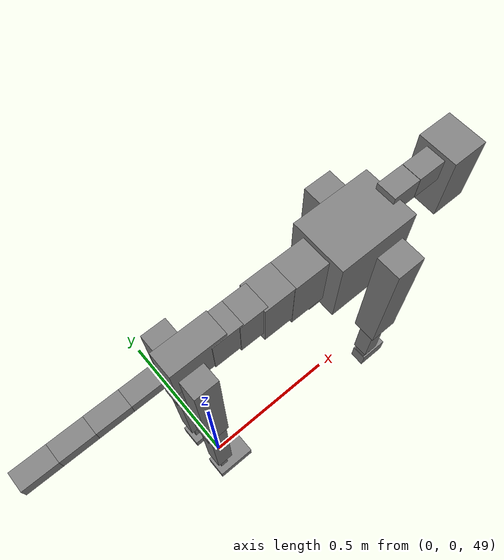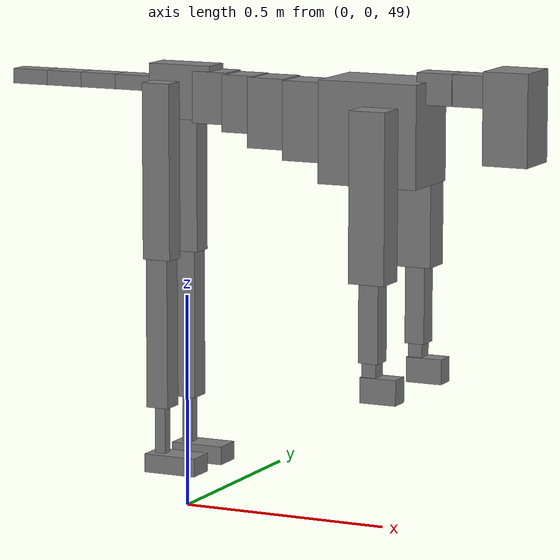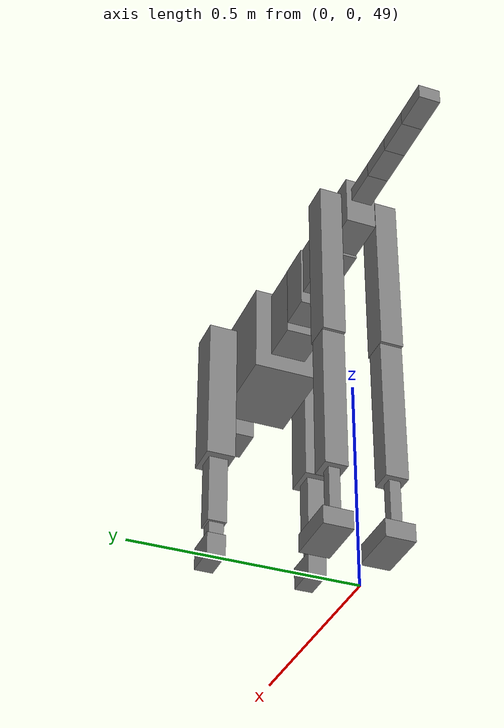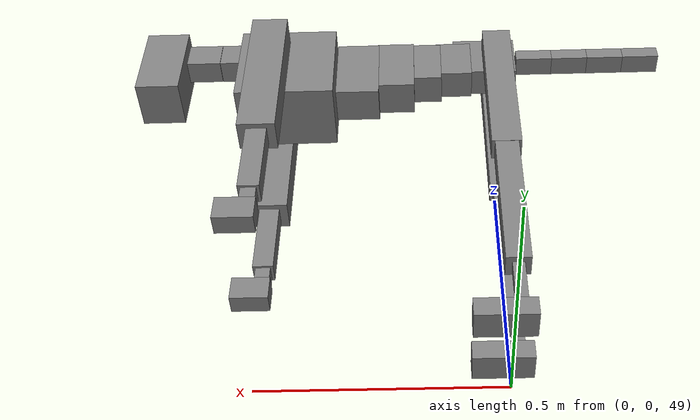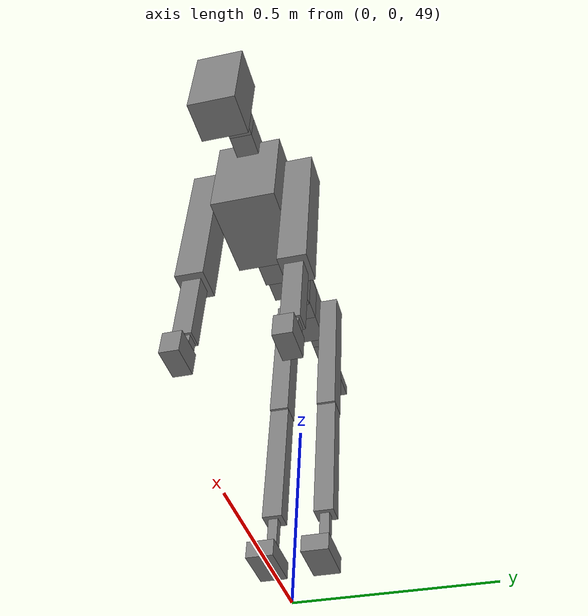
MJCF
<mujoco model="dog">

    <default>
        <joint armature="0.02" stiffness="1" damping="0.2" limited="true"/>
        <geom condim="3" friction="1 0.05 0.05" margin="0.01"/>
        <motor ctrllimited="true" ctrlrange="-1.0 1.0" forcelimited="true" gear="50"/>
    </default>

    <compiler inertiafromgeom="true" angle="radian"/>

    <option timestep="0.016" iterations="50" tolerance="1e-10" solver="Newton" jacobian="dense" cone="pyramidal"/>

    <size nconmax="20000" njmax="60000" nstack="5000000"/>
    <visual>
        <map force="0.1" zfar="30"/>
        <rgba haze="0.15 0.25 0.35 1"/>
        <quality shadowsize="2048"/>
        <global offwidth="800" offheight="800"/>
    </visual>

    <asset>
        <texture type="skybox" builtin="gradient" rgb1="0.3 0.5 0.7" rgb2="0 0 0" width="512" height="512"/>
        <texture name="texplane" type="2d" builtin="checker" rgb1=".2 .3 .4" rgb2=".1 0.15 0.2" width="512" height="512"
                 mark="cross" markrgb=".8 .8 .8"/>
        <texture name="texgeom" type="cube" builtin="flat" mark="cross" width="127" height="1278" rgb1="0.8 0.6 0.4"
                 rgb2="0.8 0.6 0.4" markrgb="1 1 1" random="0.01"/>

        <material name="matplane" reflectance="0.3" texture="texplane" texrepeat="1 1" texuniform="true"/>
        <material name="matgeom" texture="texgeom" texuniform="true" rgba="0.8 0.6 .4 1"/>
    </asset>

    <worldbody>
        <geom name="floor" pos="0 0 0" size="0 0 .25" type="plane" material="matplane" condim="3"/>

        <light directional="false" diffuse=".2 .2 .2" specular="0 0 0" pos="0 0 5" dir="0 0 -1" castshadow="false"/>
        <light mode="targetbodycom" target="torso" directional="false" diffuse=".8 .8 .8" specular="0.3 0.3 0.3"
               pos="0 0 4.0" dir="0 0 -1"/>

        <body name="root" pos="0 0 50">
            <freejoint name="root_1"/>
            <geom type="box" pos="0 0 -0.02" size="0.0774  0.0358  0.063" density="2030"/>

            <body name="spine1" pos="0.054 0 0">
                <joint name="spine1_y" axis="0 1 0" range="0 0.7" limited="true"/>
                <geom type="box" pos="0.02375 0 -0.03" size="0.04375  0.0375  0.05985" density="2030"/>

                <body name="spine2" pos="0.0612 0 0">
                    <joint name="spine2_y" axis="0 1 0" range="-0.15 0.15" limited="true"/>
                    <geom type="box" pos="0.03555  0  -0.04" size="0.04055  0.039  0.06615" density="2030"/>

                    <body name="spine3" pos="0.0730 0 0">
                        <joint name="spine3_y" axis="0 1 0" range="-0.15 0.15" limited="true"/>
                        <geom type="box" pos="0.03555  0  -0.057" size="0.04555  0.0445  0.081" density="2030"/>

                        <body name="spine4" pos="0.0780 0 0">
                            <joint name="spine4_y" axis="0 1 0" range="-0.15 0.15" limited="true"/>
                            <geom type="box" pos="0.05265  0  -0.07" size="0.05265  0.045  0.09135" density="2030"/>

                            <body name="torso" pos="0.1082 0 0">
                                <joint name="torso_y" axis="0 1 0" range="-0.15 0.15" limited="true"/>
                                <geom type="box" pos="0.11925  0  -0.085" size="0.11925  0.085  0.11745"
                                      density="2030"/>

                                <body name="neck1" pos="0.2160  0   0.0180">
                                    <joint name="neck1_y" axis="0 1 0" range="-1.2  -1" limited="true"/>
                                    <geom type="box" pos="0.0423  0  0" size="0.0423  0.03  0.036" density="2325"/>

                                    <body name="neck2" pos="0.0853  0  0">
                                        <joint name="neck2_y" axis="0 1 0" range="0.1  0" limited="true"/>
                                        <geom type="box" pos="0.0423  0  0" size="0.0423  0.03  0.036" density="2325"/>

                                        <body name="head" pos="0.0853  0  0">
                                            <joint name="head_y" axis="0 1 0" range="-0.3  -0.2" limited="true"/>
                                            <geom type="box" pos="0.0531  0  -0.055" size="0.0531  0.06  0.1044"
                                                  density="4030"/>

                                        </body>
                                    </body>
                                </body>

                                <body name="front_shoulder" pos="0.156  0   -0.0480">
                                    <joint name="front_shoulder_y" axis="0 1 0" range="-1 1.5" limited="true"/>
                                    <geom type="box" pos="0 0.13 -0.1671" size="0.0431  0.0368  0.1938" density="1158"/>
                                    <geom type="box" pos="0 -0.13 -0.1671" size="0.0431  0.0368  0.1938"
                                          density="1158"/>

                                    <body name="front_elbow" pos="0  0  -0.3342">
                                        <joint name="front_elbow_y" axis="0 1 0" range="-2 0" limited="true"/>
                                        <geom type="box" pos="0 0.13 -0.1034" size="0.0237  0.0242  0.1034"
                                              density="1081"/>
                                        <geom type="box" pos="0 -0.13 -0.1034" size="0.0237  0.0242  0.1034"
                                              density="1081"/>

                                        <body name="front_wrist" pos="0  0  -0.2069">
                                            <joint name="front_wrist_y" axis="0 1 0" range="-0.2 0" limited="true"/>
                                            <geom type="box" pos="0 0.13 -0.0235" size="0.0171  0.0190  0.0366"
                                                  density="1664"/>
                                            <geom type="box" pos="0 -0.13 -0.0235" size="0.0171  0.0190  0.0366"
                                                  density="1664"/>

                                            <body name="front_finger_end" pos="0  0  -0.0469">
                                                <joint name="front_finger_y" axis="0 1 0" range="-0.4 1"
                                                       limited="true"/>
                                                <geom type="box" pos="0.0238  0.13  -0.0143"
                                                      size="0.0436  0.0238  0.0293" density="1515"/>
                                                <geom type="box" pos="0.0238  -0.13  -0.0143"
                                                      size="0.0436  0.0238  0.0293" density="1515"/>

                                            </body>

                                        </body>
                                    </body>
                                </body>

                            </body>
                        </body>
                    </body>
                </body>
            </body>

            <body name="back_hip" pos="-0.03 0 -0.018">
                <joint name="back_hip_y" axis="0 1 0" range="-1.5 0.3" limited="true"/>
                <geom type="box" pos="0 0.07 -0.1820" size="0.0343  0.0269  0.2048" density="1154"/>
                <geom type="box" pos="0 -0.07 -0.1820" size="0.0343  0.0269  0.2048" density="1154"/>

                <body name="back_knee" pos="0  0  -0.3640">
                    <joint name="back_knee_y" axis="0 1 0" range="0 2.8" limited="true"/>
                    <geom type="box" pos="0 0.07 -0.1777" size="0.0270  0.0266  0.1933" density="1227"/>
                    <geom type="box" pos="0 -0.07 -0.1777" size="0.0270  0.0266  0.1933" density="1227"/>

                    <body name="back_ankle" pos="0  0  -0.3554">
                        <joint name="back_ankle_y" axis="0 1 0" range="-2.2 0" limited="true"/>
                        <geom type="box" pos="0 0.07 -0.0700" size="0.0130  0.0130  0.0813" density="1284"/>
                        <geom type="box" pos="0 -0.07 -0.0700" size="0.0130  0.0130  0.0813" density="1284"/>

                        <body name="back_toe_end" pos="0  0  -0.1400">
                            <joint name="back_toe_y" axis="0 1 0" range="-0.4 1" limited="true"/>
                            <geom type="box" pos="0.0351  0.07  -0.0066" size="0.0644  0.0351  0.0216" density="1515"/>
                            <geom type="box" pos="0.0351  -0.07  -0.0066" size="0.0644  0.0351  0.0216" density="1515"/>

                        </body>
                    </body>
                </body>
            </body>

            <body name="tail1" pos="-0.074 0 -0.006">
                <joint name="tail1_y" axis="0 1 0" range="-0.2 0.2" limited="true"/>
                <geom type="box" pos="-0.0536  0  0" size="0.045  0.025  0.0175" density="1587"/>

                <body name="tail2" pos="-0.09 0 0">
                    <joint name="tail2_y" axis="0 1 0" range="-0.2 0.2" limited="true"/>
                    <geom type="box" pos="-0.0536  0  0" size="0.045  0.025  0.0175" density="1587"/>

                    <body name="tail3" pos="-0.09 0 0">
                        <joint name="tail3_y" axis="0 1 0" range="-0.2 0.2" limited="true"/>
                        <geom type="box" pos="-0.0536  0  0" size="0.045  0.025  0.0175" density="1587"/>

                        <body name="tail4" pos="-0.09 0 0">
                            <joint name="tail4_y" axis="0 1 0" range="-0.2 0.2" limited="true"/>
                            <geom type="box" pos="-0.0536  0  0" size="0.045  0.025  0.0175" density="1587"/>

                        </body>
                    </body>
                </body>
            </body>
        </body>
    </worldbody>

    <actuator>
        <motor joint="spine1_y" forcerange="-150 150     "/>
        <motor joint="spine2_y" forcerange="-150 150     "/>
        <motor joint="spine3_y" forcerange="-150 150     "/>
        <motor joint="spine4_y" forcerange="-150 150     "/>
        <motor joint="torso_y" forcerange="-150 150     "/>
        <motor joint="neck1_y" forcerange="-100 100       "/>
        <motor joint="neck2_y" forcerange="-100 100       "/>
        <motor joint="head_y" forcerange="-150 150       "/>
        <motor joint="front_shoulder_y" forcerange="-152.80 192.65"/>
        <motor joint="front_elbow_y" forcerange="-169.30 106.66"/>
        <motor joint="front_wrist_y" forcerange="-90.79 61.54"/>
        <motor joint="front_finger_y" forcerange="-60.73 26.08"/>
        <motor joint="back_hip_y" forcerange="-200.84 357.60"/>
        <motor joint="back_knee_y" forcerange="-265.87 320.93"/>
        <motor joint="back_angle_y" forcerange="-50.47 57.61"/>
        <motor joint="back_toe_y" forcerange="-139.59 61.41"/>
        <motor joint="tail1_y" forcerange="-50 50     "/>
        <motor joint="tail2_y" forcerange="-50 50     "/>
        <motor joint="tail3_y" forcerange="-50 50     "/>
        <motor joint="tail4_y" forcerange="-50 50     "/>
    </actuator>
</mujoco>
